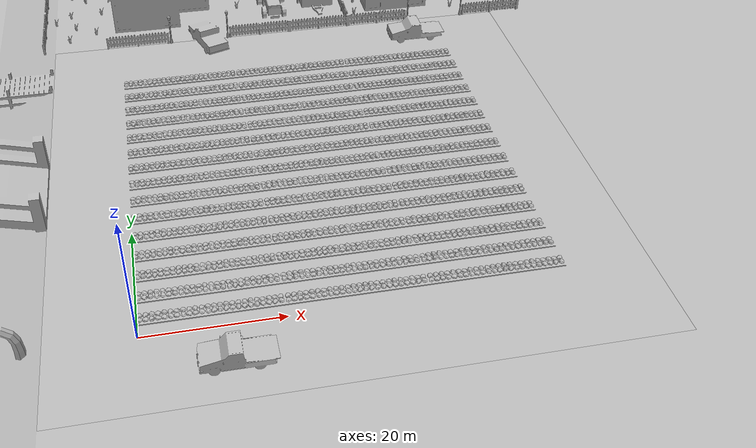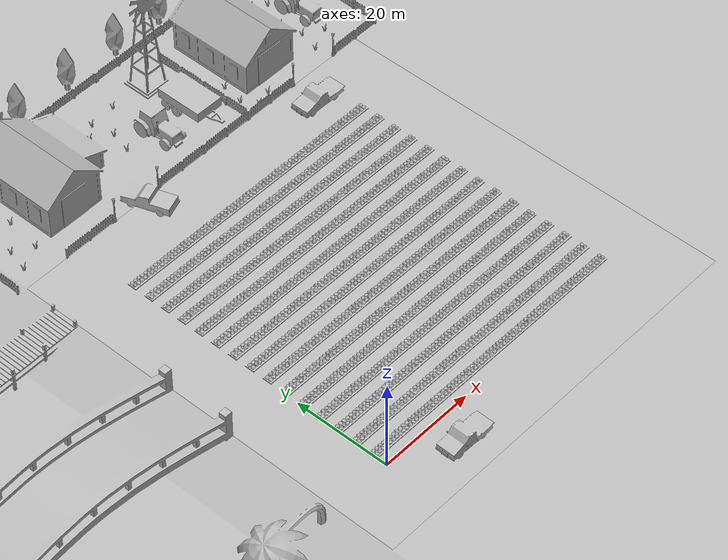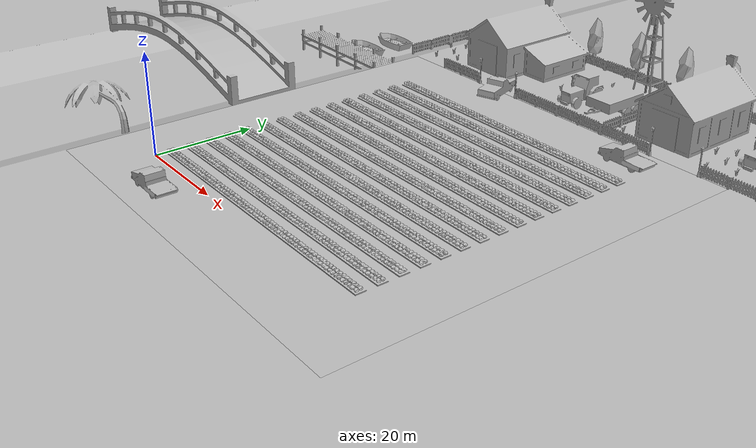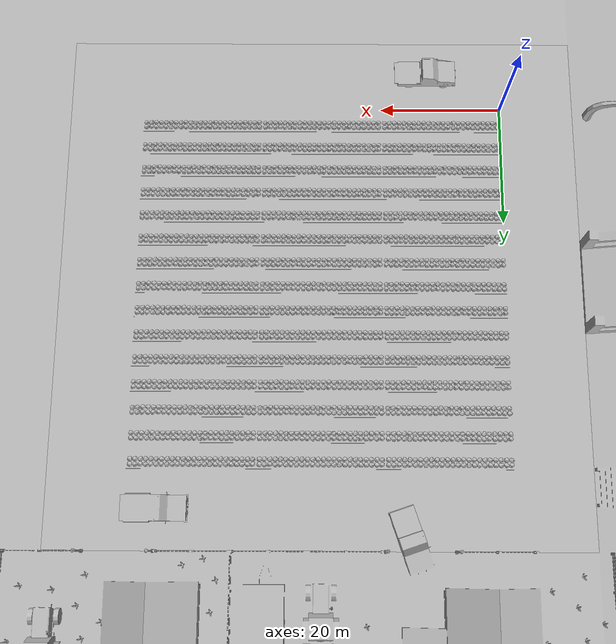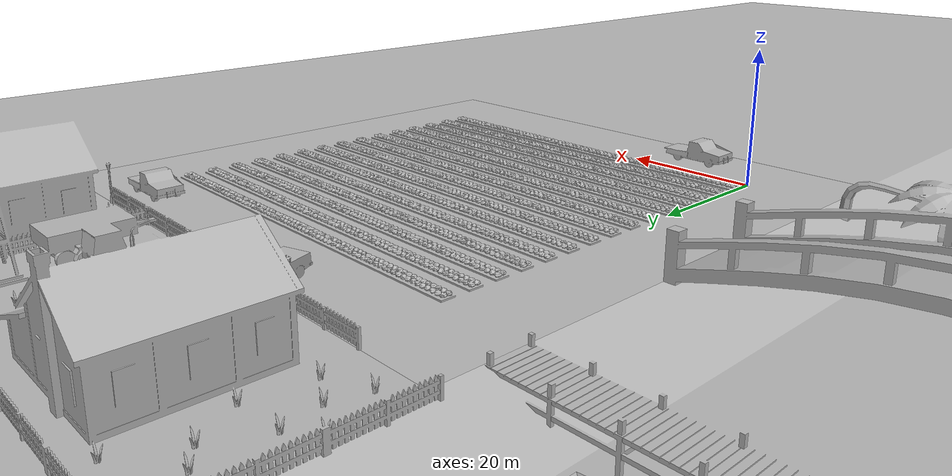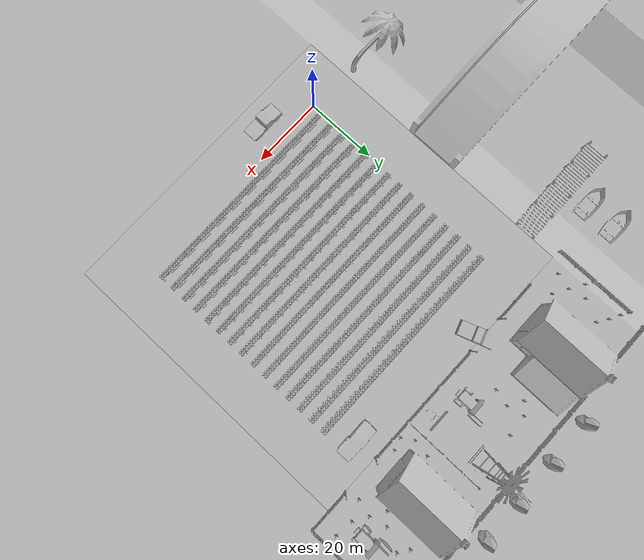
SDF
<?xml version="1.0"?>
<sdf version="1.6">
	<world name="default">
		<physics type="ode">
			<max_step_size>0.004</max_step_size>
			<real_time_factor>1</real_time_factor>
			<real_time_update_rate>250</real_time_update_rate>
			<ode>
				<solver>
					<iters>75</iters>
					<island_threads>4</island_threads>
				</solver>
				<constraints>
					<contact_surface_layer>0.005</contact_surface_layer>
				</constraints>
			</ode>
		</physics>
		<scene>
			<shadows>false</shadows>
			 <origin_visual>false</origin_visual>
			<grid>false</grid>
			<sky>
				<clouds>
					<speed>6</speed>
				</clouds>
			</sky>
		</scene>
		<include>
			<uri>model://sun</uri>
		</include>
		<include>
			<uri>model://empty_field</uri>
		</include>
		<include>
			<uri>model://scenery</uri>
			<name>scenery</name>
			<pose>0 0 0 0 0 0</pose>
		</include>
		<include>
			<uri>model://strawberry_field</uri>
			<name>field_0</name>
			<pose>0 0 0 0 0 0</pose>
		</include>
		<include>
			<uri>model://strawberry_field</uri>
			<name>field_1</name>
			<pose>0 20 0 0 0 0</pose>
		</include>
		<include>
			<uri>model://strawberry_field</uri>
			<name>field_2</name>
			<pose>0 40 0 0 0 0</pose>
		</include>
		<include>
			<uri>model://strawberry_field</uri>
			<name>field_3</name>
			<pose>20 0 0 0 0 0</pose>
		</include>
		<include>
			<uri>model://strawberry_field</uri>
			<name>field_4</name>
			<pose>20 20 0 0 0 0</pose>
		</include>
		<include>
		<uri>model://strawberry_field</uri>
			<name>field_5</name>
			<pose>20 40 0 0 0 0</pose>
		</include>
		<include>
			<uri>model://strawberry_field</uri>
			<name>field_6</name>
			<pose>40 0 0 0 0 0</pose>
		</include>
		<include>
			<uri>model://strawberry_field</uri>
			<name>field_7</name>
			<pose>40 20 0 0 0 0</pose>
		</include>
		<include>
			<uri>model://strawberry_field</uri>
			<name>field_8</name>
			<pose>40 40 0 0 0 0</pose>
		</include>
		<include>
			<uri>model://blue_truck</uri>
			<name>truck_1</name>
			<pose>12.3 -6.15 0 0 0 0</pose>
		</include>
		<include>
			<uri>model://red_truck</uri>
			<name>truck_2</name>
			<pose>55 66 0 0 0 0</pose>
		</include>
    <plugin name="ros_link_attacher_plugin" filename="libgazebo_ros_link_attacher.so"/>

	</world>
</sdf>

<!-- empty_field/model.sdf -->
<sdf version="1.6">
    <model name="empty_field">
      <static>true</static>
      <link name="empty_field">
        <visual name="visual">
          <geometry>
            <mesh><uri>model://empty_field/meshes/empty_field.obj</uri></mesh>
          </geometry>
        </visual>
        <collision name="collision">
          <geometry>
            <mesh><uri>model://empty_field/meshes/empty_field.obj</uri></mesh>
          </geometry>
        </collision>
      </link>
    </model>
</sdf>

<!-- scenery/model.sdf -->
<sdf version="1.6">
    <model name="scenery">
      <static>true</static>
      <link name="scenery">
        <visual name="visual">
          <geometry>
            <mesh><uri>model://scenery/meshes/scenery.obj</uri></mesh>
          </geometry>
        </visual>
        <collision name="collision">
          <geometry>
            <mesh><uri>model://scenery/meshes/scenery.obj</uri></mesh>
          </geometry>
        </collision>
      </link>
    </model>
</sdf>

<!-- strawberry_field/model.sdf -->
<sdf version="1.6">
    <model name="strawberry_field">
      <static>true</static>
      <link name="strawberry_field">
        <visual name="visual">
          <geometry>
            <mesh><uri>model://strawberry_field/meshes/strawberry_field.obj</uri></mesh>
          </geometry>
        </visual>
      </link>
    </model>
</sdf>

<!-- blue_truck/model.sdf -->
<sdf version="1.6">
    <model name="blue_truck">
      <static>true</static>
      <link name="empty_truck">
        <visual name="visual">
          <geometry>
            <mesh><uri>./meshes/blue_truck.obj</uri></mesh>
          </geometry>
        </visual>
        <collision name="collision">
          <geometry>
            <mesh><uri>./meshes/blue_truck.obj</uri></mesh>
          </geometry>
        </collision>
      </link>
    </model>
</sdf>

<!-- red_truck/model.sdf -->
<sdf version="1.6">
    <model name="red_truck">
      <static>true</static>
      <link name="empty_truck">
        <visual name="visual">
          <geometry>
            <mesh><uri>./meshes/red_truck.obj</uri></mesh>
          </geometry>
        </visual>
        <collision name="collision">
          <geometry>
            <mesh><uri>./meshes/red_truck.obj</uri></mesh>
          </geometry>
        </collision>
      </link>
    </model>
</sdf>
